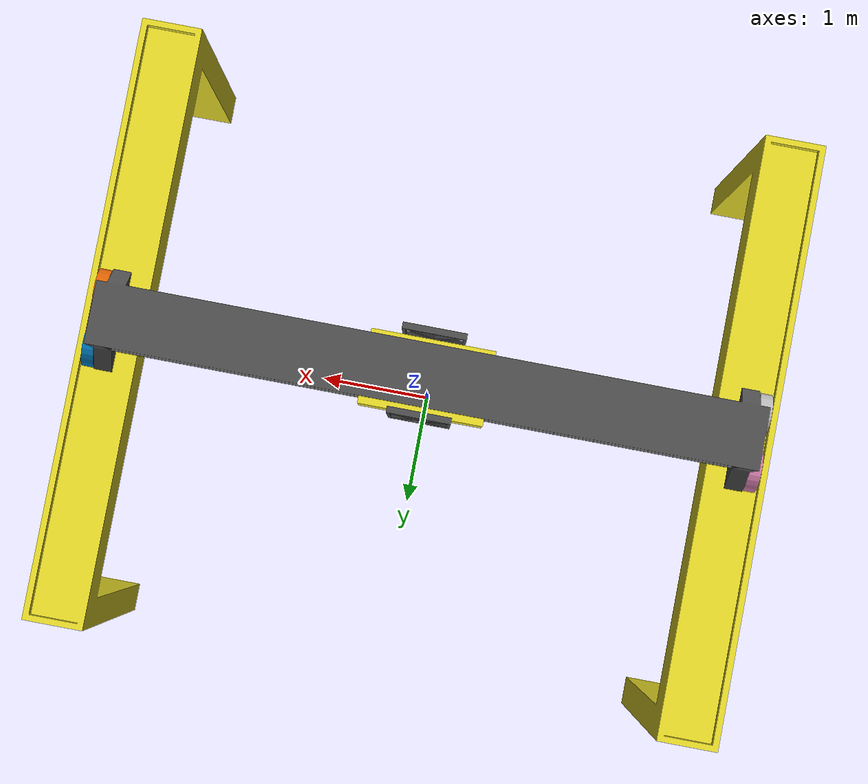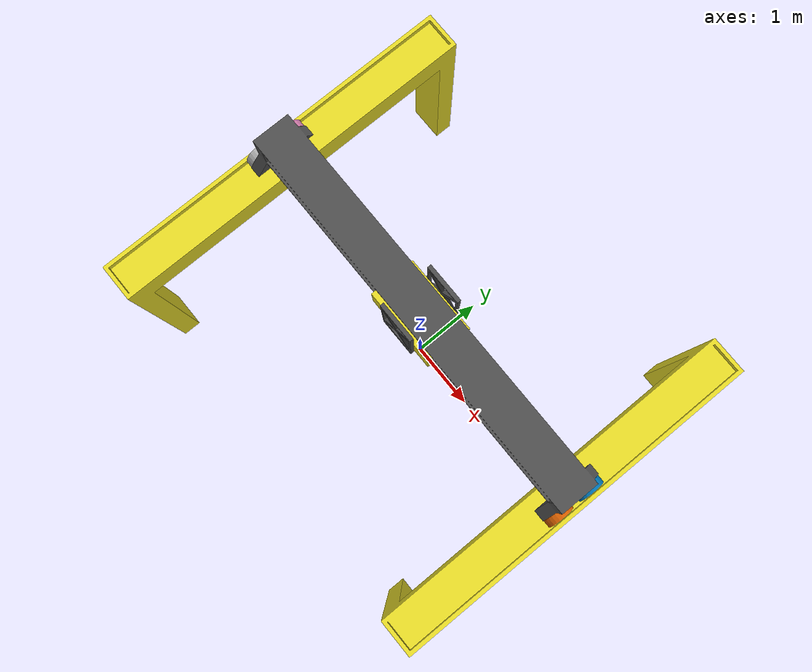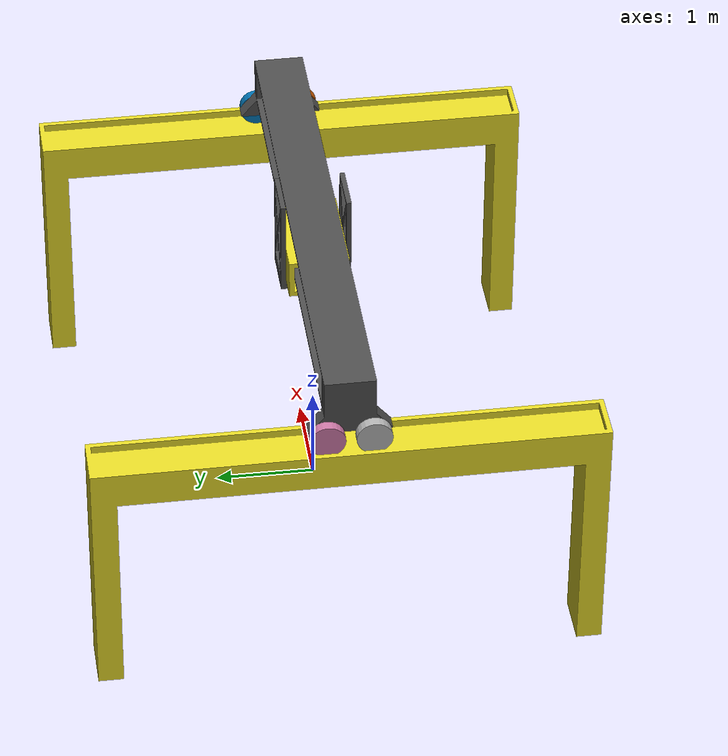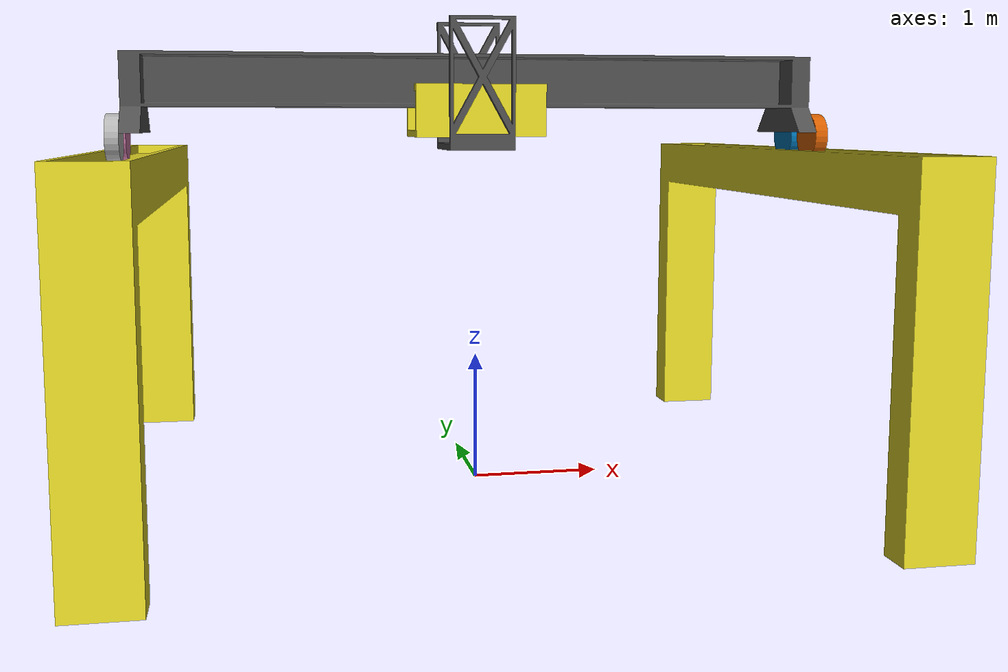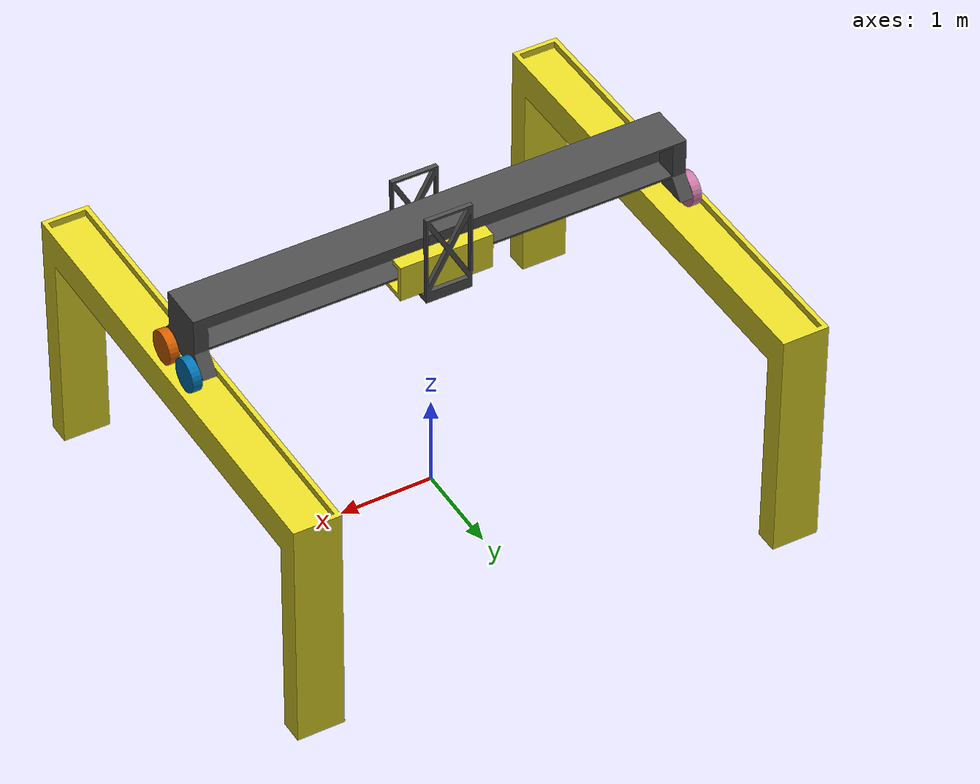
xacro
<?xml version="1.0" encoding="UTF-8"?>

<robot name="gantry_crane" xmlns:xacro="http://www.ros.org/wiki/xacro">

  <xacro:include filename="$(find gantry_robot_hvl)/urdf/gantry_v1.urdf.gazebo" />

  <link name="world"/>

  <joint name="world_joint_left" type="fixed">
    <parent link="world"/>
    <child link="left_support_arch_link" />
    <origin xyz="2.6 0 0" rpy="0 0 0"/>
  </joint>

  <joint name="world_joint_right" type="fixed">
    <parent link="world"/>
    <child link="right_support_arch_link" />
    <origin xyz="-2.6 0 0" rpy="0 0 0"/>
  </joint>

  <xacro:property name="support_scale_x" value= "0.0005" />
  <xacro:property name="support_scale_y" value= "0.0005" />
  <xacro:property name="support_scale_z" value= "0.00075" />
  <xacro:property name="high_scale" value= "0.0005" />
  <xacro:property name="mid_scale" value= "0.005" />
  <xacro:property name="low_scale" value= "0.5" />

  <xacro:property name="support_arch_length" value="5" />
  <xacro:property name="support_arch_width" value="0.5" />
  <xacro:property name="support_arch_height" value="3.3" />
  <xacro:property name="support_arch_density" value="1" />
  <xacro:property name="support_arch_mass" value="${support_arch_length*support_arch_height*support_arch_width*support_arch_density}" />

    <!--Support_arch left side -->
  <link name="left_support_arch_link">
    <visual>
      <origin  rpy="0 0 0" xyz="0 0 0"/>
      <geometry>
        <mesh filename="package://gantry_robot_hvl/meshes/support_arch_v2.stl" scale="${support_scale_x} ${support_scale_y} ${support_scale_z}"/>
      </geometry>
    </visual>
    <collision>
      <origin xyz="0 0 1.75" rpy="0 0 1.57057"/>
      <geometry>
        <box size="${support_arch_length} ${support_arch_width} ${support_arch_height}"/>
      </geometry>
    </collision>
    <inertial>
      <origin xyz="0 0 1.75" rpy="0 0 1.57057"/>
      <mass value="${support_arch_mass}"/>
      <inertia
        ixx="${support_arch_mass*(pow(support_arch_height,2) + pow(support_arch_width,2))/12}" ixy="0.0" ixz="0.0"
        iyy="${support_arch_mass*(pow(support_arch_length,2) + pow(support_arch_height,2))/12}" iyz="0.0"
        izz="${support_arch_mass*(pow(support_arch_length,2) + pow(support_arch_width,2))/12}"/>
      </inertial>
  </link>

    <!--Support_arch right side -->
  <link name="right_support_arch_link">
      <visual>
        <origin xyz="0 0 0" rpy="0 0 0"/>
        <geometry>
          <mesh filename="package://gantry_robot_hvl/meshes/support_arch_v2.stl" scale="${support_scale_x} ${support_scale_y} ${support_scale_z}"/>
        </geometry>
      </visual>
      <collision>
        <origin xyz="0 0 1.75" rpy="0 0 1.57057"/>
        <geometry>
          <box size="${support_arch_length} ${support_arch_width} ${support_arch_height}"/>
        </geometry>
      </collision>
      <inertial>
        <origin xyz="0 0 1.75" rpy="0 0 1.57057"/>
        <mass value="${support_arch_mass}"/>
        <inertia
          ixx="${support_arch_mass*(pow(support_arch_height,2) + pow(support_arch_width,2))/12}" ixy="0.0" ixz="0.0"
          iyy="${support_arch_mass*(pow(support_arch_length,2) + pow(support_arch_height,2))/12}" iyz="0.0"
          izz="${support_arch_mass*(pow(support_arch_length,2) + pow(support_arch_width,2))/12}"/>
        </inertial>
  </link>

      <!-- =================================H-beam=================================== -->
      <xacro:property name="h_beam_length" value="10" />
      <xacro:property name="h_beam_width" value="0.1" />
      <xacro:property name="h_beam_height" value="0.75" />
      <xacro:property name="h_beam_density" value="1" />
      <xacro:property name="h_beam_mass" value="${h_beam_length*h_beam_height*h_beam_width*h_beam_density}" />

  <link name="h_beam_link">
        <visual>
          <origin xyz="-2.6 -0.25 0.25" rpy="0 0 0"/>
          <geometry>
            <mesh filename="package://gantry_robot_hvl/meshes/H-Beam_v3.stl" scale="${low_scale} ${low_scale} ${low_scale}"/>
          </geometry>
        </visual>
        <collision>
          <origin xyz="-2.6 0 0.05" rpy="0 0 0"/>
          <geometry>
            <box size="${h_beam_length} ${h_beam_width} ${h_beam_height}"/>
          </geometry>
        </collision>
        <inertial>
          <origin xyz="-2.6 0 0.05" rpy="0 0 0"/>
          <mass value="${h_beam_mass}"/>
          <inertia
            ixx="${h_beam_mass*(pow(h_beam_height,2) + pow(h_beam_width,2))/12}" ixy="0.0" ixz="0.0"
            iyy="${h_beam_mass*(pow(h_beam_length,2) + pow(h_beam_height,2))/12}" iyz="0.0"
            izz="${h_beam_mass*(pow(h_beam_length,2) + pow(h_beam_width,2))/12}"/>
          </inertial>
  </link>

        <!-- ====================== H-Beam left joint ============================== -->
  <joint name="h_beam_joint_left" type="prismatic">
          <origin xyz="0 0 3.1" rpy="0 0 0"/>
          <parent link="left_support_arch_link"/>
          <child link="h_beam_link"/>
          <axis xyz="0 1 0" rpy="0 0 0"/>

          <calibration rising="0.0"/>
          <dynamics damping="0.0" friction="1.0"/>
          <limit effort="30" velocity="1.0" lower="-2" upper="2" />
          <safety_controller k_velocity="10" k_position="15" soft_lower_limit="-1.75" soft_upper_limit="1.75" />
  </joint>

        <!-- H-beam wheels -->

        <xacro:property name="wheel_width" value="0.1" />
        <xacro:property name="wheel_radius" value="0.175" />
        <xacro:property name="wheel_x" value="0.1" />
        <xacro:property name="wheel_x_right" value="-5.3" />
        <xacro:property name="wheel_y" value="0.225" />
        <xacro:property name="wheel_z" value="0.375" />

  <link name="front_left_wheel">
          <visual name="flw">
            <origin xyz="0 0 0 " rpy="0 0 0"/>
            <geometry>
              <cylinder radius="${wheel_radius}" length="${wheel_width}"/>
            </geometry>
          </visual>
          <collision>
            <origin xyz="0 0 0" rpy="0 0 0"/>
            <geometry>
              <cylinder radius="${wheel_radius}" length="${wheel_width}"/>
            </geometry>
          </collision>

  </link>

  <joint type="fixed" name="front_left_wheel_joint">
          <origin xyz="${wheel_x} ${wheel_y} -${wheel_z}" rpy="1.57057 0 1.57057"/>
          <child link="front_left_wheel"/>
          <parent link="h_beam_link"/>
        </joint>

  <link name="back_left_wheel">
          <visual name="blw">
            <origin xyz="0 0 0 " rpy="0 0 0"/>
            <geometry>
              <cylinder radius="${wheel_radius}" length="${wheel_width}"/>
            </geometry>
          </visual>
          <collision>
            <origin xyz="0 0 0 " rpy="0 0 0"/>
            <geometry>
              <cylinder radius="${wheel_radius}" length="${wheel_width}"/>
            </geometry>
          </collision>
  </link>

  <joint type="fixed" name="back_left_wheel_joint">
          <origin xyz="${wheel_x} -${wheel_y} -${wheel_z}" rpy="1.57057 0 1.57057"/>
          <child link="back_left_wheel"/>
          <parent link="h_beam_link"/>
  </joint>

  <link name="front_right_wheel">
          <visual name="frw">
            <origin xyz="0 0 0 " rpy="0 0 0"/>
            <geometry>
              <cylinder radius="${wheel_radius}" length="${wheel_width}"/>
            </geometry>
          </visual>
          <collision>
            <origin xyz="0 0 0 " rpy="0 0 0"/>
            <geometry>
              <cylinder radius="${wheel_radius}" length="${wheel_width}"/>
            </geometry>
          </collision>
  </link>

  <joint type="fixed" name="front_right_wheel_joint">
          <origin xyz="${wheel_x_right} ${wheel_y} -${wheel_z}" rpy="1.57057 0 1.57057"/>
          <child link="front_right_wheel"/>
          <parent link="h_beam_link"/>
  </joint>

  <link name="back_right_wheel">
          <visual name="brw">
            <origin xyz="0 0 0 " rpy="0 0 0"/>
            <geometry>
              <cylinder radius="${wheel_radius}" length="${wheel_width}"/>
            </geometry>
          </visual>
          <collision>
            <origin xyz="0 0 0" rpy="0 0 0"/>
            <geometry>
              <cylinder radius="${wheel_radius}" length="${wheel_width}"/>
            </geometry>
          </collision>
  </link>

  <joint type="fixed" name="back_right_wheel_joint">
          <origin xyz="${wheel_x_right} -${wheel_y} -${wheel_z}" rpy="1.57057 0 1.57057"/>
          <child link="back_right_wheel"/>
          <parent link="h_beam_link"/>
  </joint>

        <!-- ==============Trolly================ -->

        <xacro:property name="trolly_length" value="1.2" />
        <xacro:property name="trolly_width" value="2" />
        <xacro:property name="trolly_height" value="0.1" />
        <xacro:property name="trolly_density" value="1" />
        <xacro:property name="trolly_mass" value="${trolly_length*trolly_height*trolly_width*trolly_density}" />
        <xacro:property name="trolly_x" value="-2.6" />
        <xacro:property name="trolly_y" value="0" />
        <xacro:property name="trolly_z" value="-0.375" />

  <link name="trolly_link">
          <visual>
            <origin xyz="0 0 0" rpy="0 0 0"/>
            <geometry>
              <mesh filename="package://gantry_robot_hvl/meshes/trolly_v3.stl" scale="${mid_scale} ${mid_scale} ${mid_scale}"/>
            </geometry>
          </visual>
          <collision>
            <origin xyz="0 0 0" rpy="0 0 0"/>
            <geometry>
              <box size="${trolly_length} ${trolly_width} ${trolly_height}"/>
            </geometry>
          </collision>
          <inertial>
            <origin xyz="0 0 0" rpy="0 0 0"/>
            <mass value="${trolly_mass}"/>
            <inertia
              ixx="${trolly_mass*(pow(trolly_height,2) + pow(trolly_width,2))/12}" ixy="0.0" ixz="0.0"
              iyy="${trolly_mass*(pow(trolly_length,2) + pow(trolly_height,2))/12}" iyz="0.0"
              izz="${trolly_mass*(pow(trolly_length,2) + pow(trolly_width,2))/12}"/>
            </inertial>
  </link>

  <joint name="trolly_joint" type="prismatic">
            <origin xyz="${trolly_x} ${trolly_y} ${trolly_z}" rpy="0 0 1.57057"/>
            <parent link="h_beam_link"/>
            <child link="trolly_link"/>
            <axis xyz="0 1 0" rpy="0 0 0"/>

            <calibration rising="0.0"/>
            <dynamics damping="0.0" friction="1.0"/>
            <limit effort="30" velocity="1.0" lower="-2" upper="2" />
            <safety_controller k_velocity="10" k_position="15" soft_lower_limit="-1.75" soft_upper_limit="1.75" />
  </joint>

          <!-- ========================= Crane ======================-->

          <xacro:property name="crane_length" value="1.4" />
          <xacro:property name="crane_width" value="1" />
          <xacro:property name="crane_height" value="0.1" />
          <xacro:property name="crane_density" value="1" />
          <xacro:property name="crane_mass" value="${crane_length*crane_height*crane_width*crane_density}" />
          <xacro:property name="crane_x" value="0" />
          <xacro:property name="crane_y" value="0" />
          <xacro:property name="crane_z" value="0" />

  <link name="crane_link">
            <visual>
              <origin xyz="0 0 0" rpy="1.57057 0 0"/>
              <geometry>
                <mesh filename="package://gantry_robot_hvl/meshes/crane_v3.stl" scale="${mid_scale} ${mid_scale} ${mid_scale}"/>
              </geometry>
            </visual>
            <collision>
              <origin xyz="0 0 0.1" rpy="0 0 0"/>
              <geometry>
                <box size="${crane_length} ${crane_width} ${crane_height}"/>
              </geometry>
            </collision>
            <inertial>
              <origin xyz="0 0 0.1" rpy="1.57057 0 0"/>
              <mass value="${crane_mass}"/>
              <inertia
                ixx="${crane_mass*(pow(crane_height,2) + pow(crane_width,2))/12}" ixy="0.0" ixz="0.0"
                iyy="${crane_mass*(pow(crane_length,2) + pow(crane_height,2))/12}" iyz="0.0"
                izz="${crane_mass*(pow(crane_length,2) + pow(crane_width,2))/12}"/>
              </inertial>
  </link>

  <joint name="crane_joint" type="prismatic">
              <origin xyz="0 0 0" rpy="0 0 0"/>
              <parent link="trolly_link"/>
              <child link="crane_link"/>
              <axis xyz="0 0 1" rpy="0 0 0"/>

              <calibration rising="0.0"/>
              <dynamics damping="0.0" friction="10.0"/>
              <limit effort="30" velocity="1.0" lower="-1.1" upper="0" />
              <safety_controller k_velocity="10" k_position="15" soft_lower_limit="-1" soft_upper_limit="0" />
  </joint>

            <!-- ========================transmission============================ -->

  <transmission name="h_beam_transmission">
              <type>transmission_interface/SimpleTransmission</type>
              <joint name="h_beam_joint_left">
                <hardwareInterface>hardware_interface/PositionJointInterface</hardwareInterface>
              </joint>
              <actuator name="h_beam_motor">
                <hardwareInterface>hardware_interface/PositionJointInterface</hardwareInterface>
                <mechanicalReduction>1</mechanicalReduction>
              </actuator>
  </transmission>

  <transmission name="trolly_trasmission">
              <type>transmission_interface/SimpleTransmission</type>
              <joint name="trolly_joint">
                <hardwareInterface>hardware_interface/PositionJointInterface</hardwareInterface>
              </joint>
              <actuator name="trolly_motor">
                <hardwareInterface>hardware_interface/PositionJointInterface</hardwareInterface>
                <mechanicalReduction>1</mechanicalReduction>
              </actuator>
  </transmission>

  <transmission name="crane_transmission">
              <type>transmission_interface/SimpleTransmission</type>
              <joint name="crane_joint">
                <hardwareInterface>hardware_interface/PositionJointInterface</hardwareInterface>
              </joint>
              <actuator name="crane_motor">
                <hardwareInterface>hardware_interface/PositionJointInterface</hardwareInterface>
                <mechanicalReduction>1</mechanicalReduction>
              </actuator>
  </transmission>

</robot>
